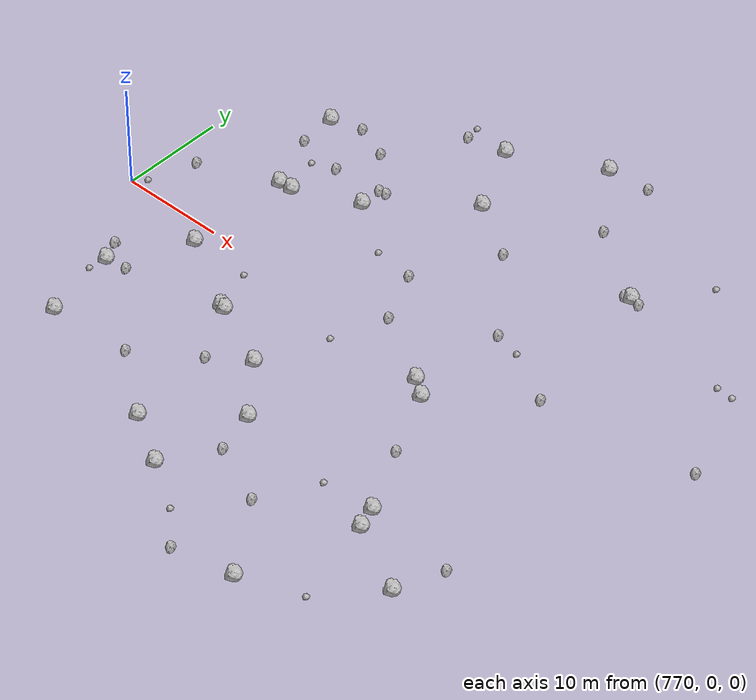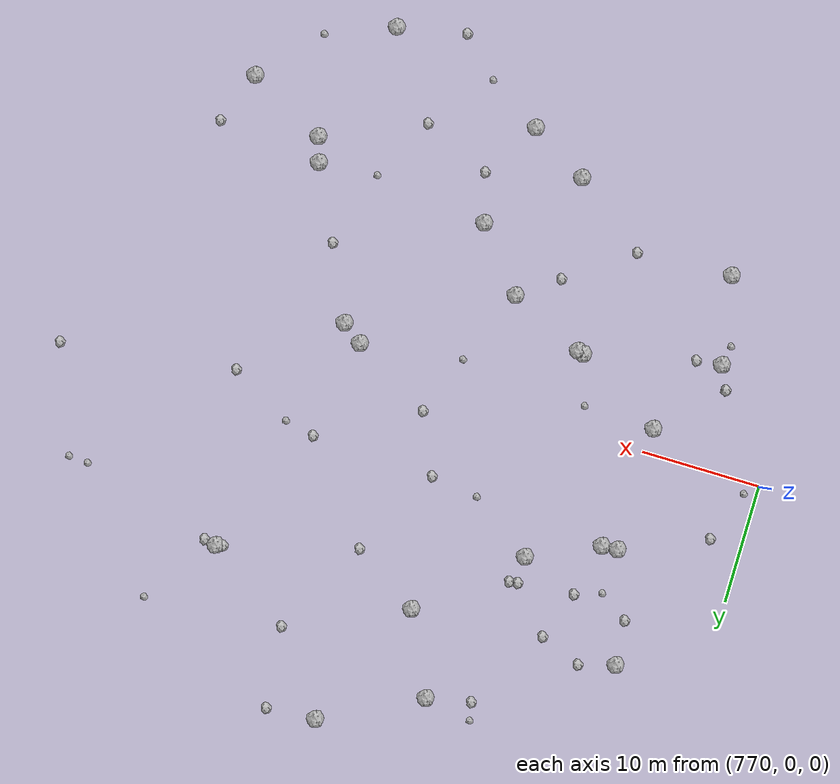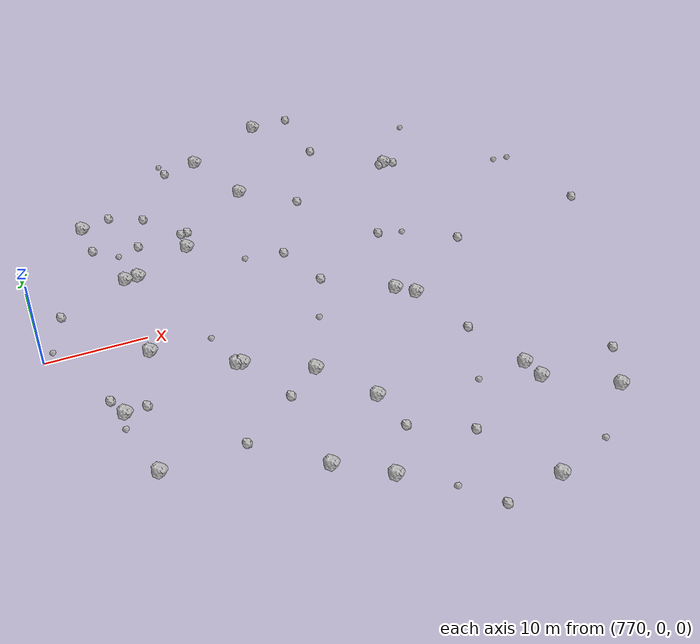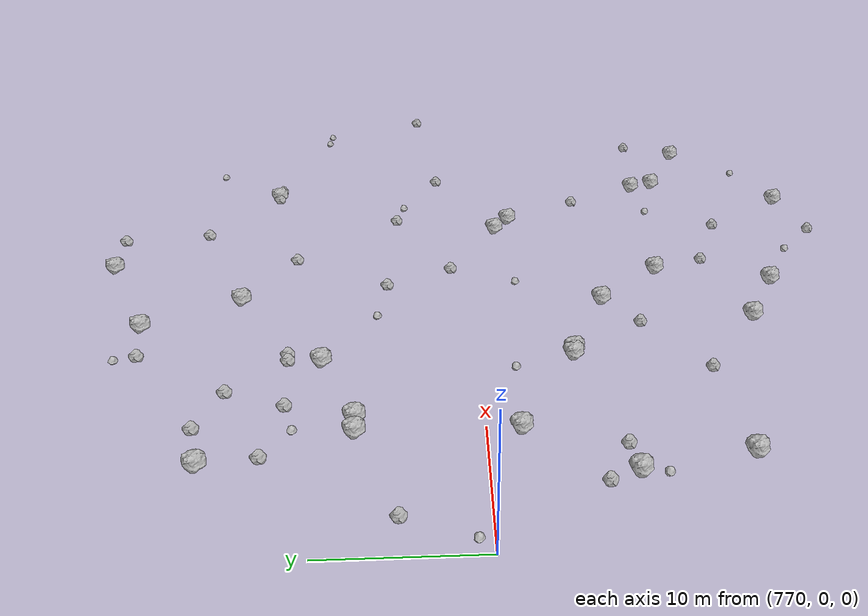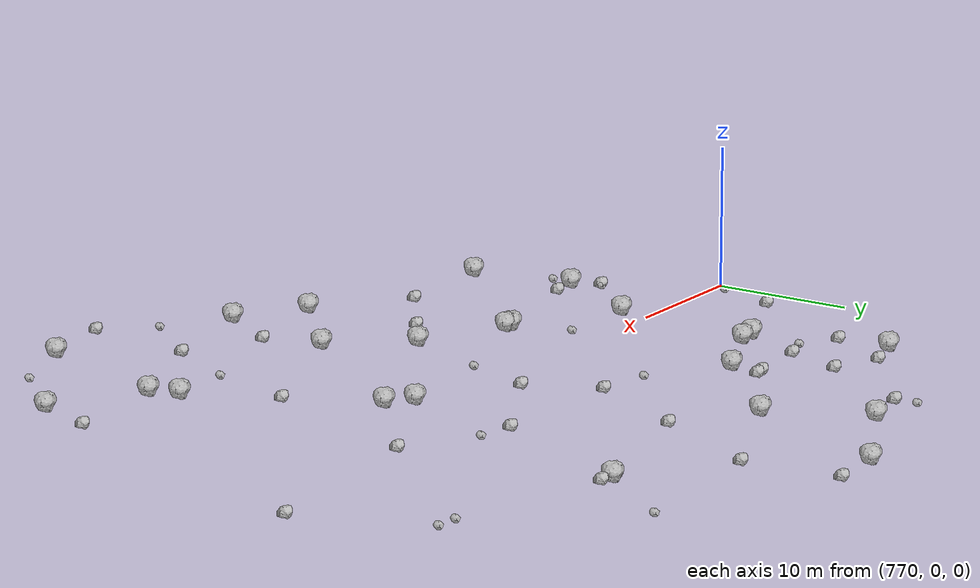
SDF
<sdf version="1.6">
 <world name="default">
  <include><uri>model://sun</uri></include>
  <model name="rock1_20_4">
   <include><uri>model://rock1</uri><pose>813.3432897500328 -17.477772166116754 0.5 0 0 0</pose></include>
  </model>
  <model name="rock1_20_5">
   <include><uri>model://rock1</uri><pose>806.848657105821 -3.2626261622188615 0.5 0 0 0</pose></include>
  </model>
  <model name="rock1_20_6">
   <include><uri>model://rock1</uri><pose>787.64299131246 -6.552319162978296 0.5 0 0 0</pose></include>
  </model>
  <model name="rock1_20_7">
   <include><uri>model://rock1</uri><pose>781.1717239063065 8.377591050709249 0.5 0 0 0</pose></include>
  </model>
  <model name="rock1_20_8">
   <include><uri>model://rock1</uri><pose>793.9182504384153 -9.488638137067397 0.5 0 0 0</pose></include>
  </model>
  <model name="rock1_20_9">
   <include><uri>model://rock1</uri><pose>794.8046693988176 17.86870465074911 0.5 0 0 0</pose></include>
  </model>
  <model name="rock1_20_10">
   <include><uri>model://rock1</uri><pose>787.015529359285 11.048335836366 0.5 0 0 0</pose></include>
  </model>
  <model name="rock1_20_11">
   <include><uri>model://rock1</uri><pose>787.1517429206225 -6.41666207367367 0.5 0 0 0</pose></include>
  </model>
  <model name="rock1_20_12">
   <include><uri>model://rock1</uri><pose>805.1522451460222 -1.9972432525596346 0.5 0 0 0</pose></include>
  </model>
  <model name="rock1_20_13">
   <include><uri>model://rock1</uri><pose>791.5770370041616 24.593485850077613 0.5 0 0 0</pose></include>
  </model>
  <model name="rock1_20_14">
   <include><uri>model://rock1</uri><pose>777.2835536232011 17.496834337785735 0.5 0 0 0</pose></include>
  </model>
  <model name="rock1_20_15">
   <include><uri>model://rock1</uri><pose>775.873623005915 -8.830380681729519 0.5 0 0 0</pose></include>
  </model>
  <model name="rock1_20_16">
   <include><uri>model://rock1</uri><pose>811.8649511019071 17.419567377477932 0.5 0 0 0</pose></include>
  </model>
  <model name="rock1_20_17">
   <include><uri>model://rock1</uri><pose>819.8162586030898 -20.86608030034775 0.5 0 0 0</pose></include>
  </model>
  <model name="rock1_20_18">
   <include><uri>model://rock1</uri><pose>798.1065724890608 -14.507828183917105 0.5 0 0 0</pose></include>
  </model>
  <model name="rock1_20_19">
   <include><uri>model://rock1</uri><pose>799.8375530375835 28.850361245963413 0.5 0 0 0</pose></include>
  </model>
  <model name="rock1_20_20">
   <include><uri>model://rock1</uri><pose>791.3876888996989 -20.423638843472684 0.5 0 0 0</pose></include>
  </model>
  <model name="rock1_20_21">
   <include><uri>model://rock1</uri><pose>777.1916993930201 -16.179160058532524 0.5 0 0 0</pose></include>
  </model>
  <model name="rock1_20_22">
   <include><uri>model://rock1</uri><pose>809.6847389056413 -28.041914763737328 0.5 0 0 0</pose></include>
  </model>
  <model name="rock1_20_23">
   <include><uri>model://rock1</uri><pose>779.8197688496995 -2.140918631910477 0.5 0 0 0</pose></include>
  </model>
  <model name="rock1_20_24">
   <include><uri>model://rock1</uri><pose>812.6849150577337 -15.417921936409249 0.5 0 0 0</pose></include>
  </model>
  <model name="rock1_20_25">
   <include><uri>model://rock1</uri><pose>796.2405754395035 -23.31001666492701 0.5 0 0 0</pose></include>
  </model>
  <model name="rock1_20_26">
   <include><uri>model://rock1</uri><pose>779.8286134940772 8.29140048491928 0.5 0 0 0</pose></include>
  </model>
  <model name="rock2_20_0">
   <include><uri>model://rock2</uri><pose>787.636072657823 13.435127764768794 0.3 0 0 0</pose></include>
  </model>
  <model name="rock2_20_1">
   <include><uri>model://rock2</uri><pose>811.212034895179 17.3257455293094 0.3 0 0 0</pose></include>
  </model>
  <model name="rock2_20_2">
   <include><uri>model://rock2</uri><pose>800.2931782710696 14.362596086187438 0.3 0 0 0</pose></include>
  </model>
  <model name="rock2_20_3">
   <include><uri>model://rock2</uri><pose>774.9115775179716 -6.869676148301604 0.3 0 0 0</pose></include>
  </model>
  <model name="rock2_20_4">
   <include><uri>model://rock2</uri><pose>796.2415523337748 6.9064086044648505 0.3 0 0 0</pose></include>
  </model>
  <model name="rock2_20_5">
   <include><uri>model://rock2</uri><pose>780.240464411481 18.41157534737212 0.3 0 0 0</pose></include>
  </model>
  <model name="rock2_20_6">
   <include><uri>model://rock2</uri><pose>799.1863845163156 -18.544985551979238 0.3 0 0 0</pose></include>
  </model>
  <model name="rock2_20_7">
   <include><uri>model://rock2</uri><pose>821.4935819102554 -16.432914013301374 0.3 0 0 0</pose></include>
  </model>
  <model name="rock2_20_8">
   <include><uri>model://rock2</uri><pose>787.8200021156758 23.89152471804431 0.3 0 0 0</pose></include>
  </model>
  <model name="rock2_20_9">
   <include><uri>model://rock2</uri><pose>777.9517421706906 -8.542234533300238 0.3 0 0 0</pose></include>
  </model>
  <model name="rock2_20_10">
   <include><uri>model://rock2</uri><pose>783.6961451886609 17.027178293223514 0.3 0 0 0</pose></include>
  </model>
  <model name="rock2_20_11">
   <include><uri>model://rock2</uri><pose>798.50562576182 1.9245242261670903 0.3 0 0 0</pose></include>
  </model>
  <model name="rock2_20_12">
   <include><uri>model://rock2</uri><pose>804.883137637828 -21.085691832614426 0.3 0 0 0</pose></include>
  </model>
  <model name="rock2_20_13">
   <include><uri>model://rock2</uri><pose>803.8803699431571 -29.16559394971718 0.3 0 0 0</pose></include>
  </model>
  <model name="rock2_20_14">
   <include><uri>model://rock2</uri><pose>803.9560881214641 29.187503863032873 0.3 0 0 0</pose></include>
  </model>
  <model name="rock2_20_15">
   <include><uri>model://rock2</uri><pose>804.6802035764767 22.367707557649837 0.3 0 0 0</pose></include>
  </model>
  <model name="rock2_20_16">
   <include><uri>model://rock2</uri><pose>814.3181045464055 3.024038486773776 0.3 0 0 0</pose></include>
  </model>
  <model name="rock2_20_17">
   <include><uri>model://rock2</uri><pose>790.6042925947379 -11.83958158533424 0.3 0 0 0</pose></include>
  </model>
  <model name="rock2_20_18">
   <include><uri>model://rock2</uri><pose>777.5534036521319 13.818370849812077 0.3 0 0 0</pose></include>
  </model>
  <model name="rock2_20_19">
   <include><uri>model://rock2</uri><pose>809.6618596305802 -9.332210577805796 0.3 0 0 0</pose></include>
  </model>
  <model name="rock2_20_20">
   <include><uri>model://rock2</uri><pose>786.9259510286863 13.342924787540582 0.3 0 0 0</pose></include>
  </model>
  <model name="rock2_20_21">
   <include><uri>model://rock2</uri><pose>806.662936116339 6.490791505309858 0.3 0 0 0</pose></include>
  </model>
  <model name="rock2_20_22">
   <include><uri>model://rock2</uri><pose>782.2029683401282 12.935150474723123 0.3 0 0 0</pose></include>
  </model>
  <model name="rock2_20_23">
   <include><uri>model://rock2</uri><pose>829.0001936172765 4.990640480567855 0.3 0 0 0</pose></include>
  </model>
  <model name="rock2_20_24">
   <include><uri>model://rock2</uri><pose>772.6709105145816 5.312981033403318 0.3 0 0 0</pose></include>
  </model>
  <model name="rock2_20_25">
   <include><uri>model://rock2</uri><pose>812.8296749889256 17.25842597277456 0.3 0 0 0</pose></include>
  </model>
  <model name="rock2_20_26">
   <include><uri>model://rock2</uri><pose>785.1828486121192 -15.720914649249933 0.3 0 0 0</pose></include>
  </model>
  <model name="rock3_20_0">
   <include><uri>model://rock3</uri><pose>823.9364924016885 13.924154215943076 0.2 0 0 0</pose></include>
  </model>
  <model name="rock3_20_1">
   <include><uri>model://rock3</uri><pose>800.716227739228 -26.130115389449674 0.2 0 0 0</pose></include>
  </model>
  <model name="rock3_20_2">
   <include><uri>model://rock3</uri><pose>771.0426992225052 0.9039269866656561 0.2 0 0 0</pose></include>
  </model>
  <model name="rock3_20_3">
   <include><uri>model://rock3</uri><pose>809.1603120453944 5.885350263404575 0.2 0 0 0</pose></include>
  </model>
  <model name="rock3_20_4">
   <include><uri>model://rock3</uri><pose>796.5266718733112 -3.148401446145744 0.2 0 0 0</pose></include>
  </model>
  <model name="rock3_20_5">
   <include><uri>model://rock3</uri><pose>785.7633769128096 -2.3342834002568864 0.2 0 0 0</pose></include>
  </model>
  <model name="rock3_20_6">
   <include><uri>model://rock3</uri><pose>787.5016207594196 25.367146692372522 0.2 0 0 0</pose></include>
  </model>
  <model name="rock3_20_7">
   <include><uri>model://rock3</uri><pose>775.5045021009639 -10.52423837416783 0.2 0 0 0</pose></include>
  </model>
  <model name="rock3_20_8">
   <include><uri>model://rock3</uri><pose>807.6889201323352 -15.797757285915807 0.2 0 0 0</pose></include>
  </model>
  <model name="rock3_20_9">
   <include><uri>model://rock3</uri><pose>779.9462201798577 12.13646405142233 0.2 0 0 0</pose></include>
  </model>
  <model name="rock3_20_10">
   <include><uri>model://rock3</uri><pose>816.2718053804714 23.22412089628503 0.2 0 0 0</pose></include>
  </model>
  <model name="rock3_20_11">
   <include><uri>model://rock3</uri><pose>815.2544213387664 -25.81111615530675 0.2 0 0 0</pose></include>
  </model>
  <model name="rock3_20_12">
   <include><uri>model://rock3</uri><pose>775.02924634674 -6.794210324331754 0.2 0 0 0</pose></include>
  </model>
  <model name="rock3_20_13">
   <include><uri>model://rock3</uri><pose>792.1918868907136 7.441401322954206 0.2 0 0 0</pose></include>
  </model>
  <model name="rock3_20_14">
   <include><uri>model://rock3</uri><pose>825.5714218387051 13.803572215891393 0.2 0 0 0</pose></include>
  </model>
 </world>
</sdf>
